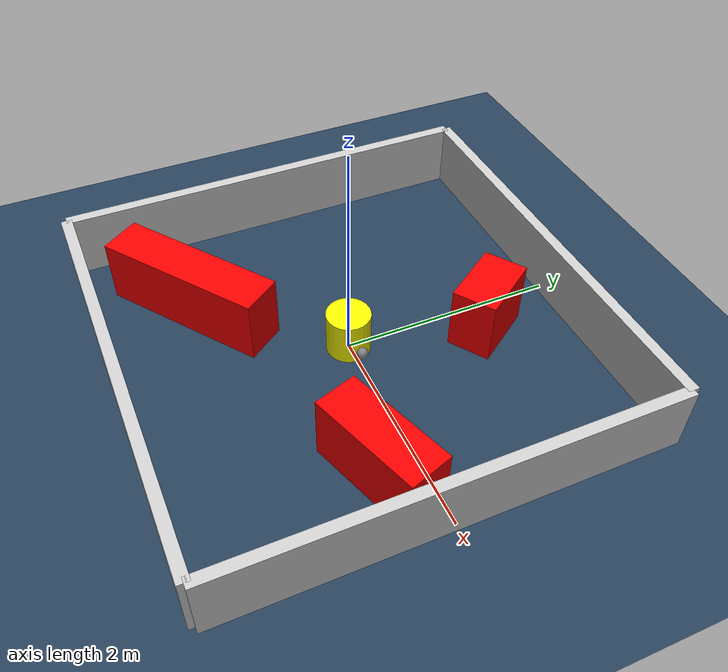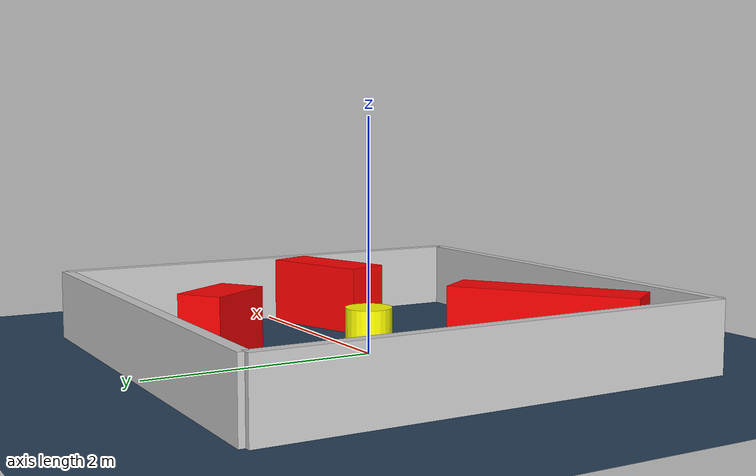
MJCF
<?xml version="1.0" ?>
<mujoco model="generated_environment">
  <option timestep="0.01" integrator="RK4" cone="elliptic"/>
  <default>
    <geom density="1"/>
  </default>
  <asset>
    <texture builtin="gradient" height="3072" rgb1="0.3 0.5 0.7" rgb2="0 0 0" type="skybox" width="512"/>
    <texture builtin="checker" height="300" mark="edge" markrgb="0.8 0.8 0.8" name="groundplane" rgb1="0.2 0.3 0.4" rgb2="0.1 0.2 0.3" type="2d" width="300"/>
    <material name="groundplane" reflectance="0.2" texrepeat="5 5" texture="groundplane" texuniform="true"/>
    <material name="robot" rgba="0.0 1.0 0.0 1"/>
  </asset>
  <worldbody>
    <light dir="0 0 -1" directional="true" pos="0 0 1.5"/>
    <geom condim="4" friction="1.0 0.005 0.001" material="groundplane" name="floor" size="0 0 0.05" type="plane"/>
    <body name="walls">
      <geom name="wall_1" condim="4" pos="-2.0 0.0 0.3" rgba="0.800000011920929 0.800000011920929 0.800000011920929 1.0" size="0.05 2.0 0.3" type="box"/>
      <geom name="wall_2" condim="4" pos="2.0 0.0 0.3" rgba="0.800000011920929 0.800000011920929 0.800000011920929 1.0" size="0.05 2.0 0.3" type="box"/>
      <geom name="wall_3" condim="4" pos="0.0 -2.0 0.3" rgba="0.800000011920929 0.800000011920929 0.800000011920929 1.0" size="2.0 0.05 0.3" type="box"/>
      <geom name="wall_4" condim="4" pos="0.0 2.0 0.3" rgba="0.800000011920929 0.800000011920929 0.800000011920929 1.0" size="2.0 0.05 0.3" type="box"/>
    </body>
    <body name="robot">
      <joint name="joint_x" type="slide" pos="0 0 0" axis="1 0 0"/>
      <joint name="joint_y" type="slide" pos="0 0 0" axis="0 1 0"/>
      <geom name="robot" type="sphere" pos="0.3 0.0 0.2" size="0.05" mass="5." friction="1.0 0.005 0.0001" condim="4" rgba="0.5 0.5 0.5 1.0"/>
      <site name="sensor_ball"/>
    </body>
    <body name="obstacle_movable_1">
      <geom name="obstacle_movable_1" condim="4" pos="0.0 0.0 0.2" euler="0 0 0.0" friction="1.0 0.005 0.001" rgba="1.0 1.0 0.0 1.0" size="0.2 0.2 0.0" type="cylinder" mass="0.1"/>
      <joint type="free"/>
    </body>
    <body name="obstacle_2_static">
      <geom name="obstacle_2_static" condim="4" pos="0.29675905501140654 1.2108762494855492 0.3" euler="0 0 124.16930199227146" friction="1.0 0.005 0.001" rgba="1 0 0 1" size="0.3175688210807161 0.2 0.3" type="box"/>
    </body>
    <body name="obstacle_3_static">
      <geom name="obstacle_3_static" condim="4" pos="1.3864245917780167 -0.33939248448814174 0.3" euler="0 0 18.68604911252724" friction="1.0 0.005 0.001" rgba="1 0 0 1" size="0.5163186745165892 0.2 0.3" type="box"/>
    </body>
    <body name="obstacle_4_static">
      <geom name="obstacle_4_static" condim="4" pos="-0.9611575651297675 -1.1257288201846964 0.3" euler="0 0 215.6218473073" friction="1.0 0.005 0.001" rgba="1 0 0 1" size="0.7951531672924097 0.2 0.3" type="box"/>
    </body>
  </worldbody>
  <actuator>
    <motor name="actuator_x" joint="joint_x" gear="1" ctrlrange="-1 1"/>
    <motor name="actuator_y" joint="joint_y" gear="1" ctrlrange="-1 1"/>
  </actuator>
</mujoco>
